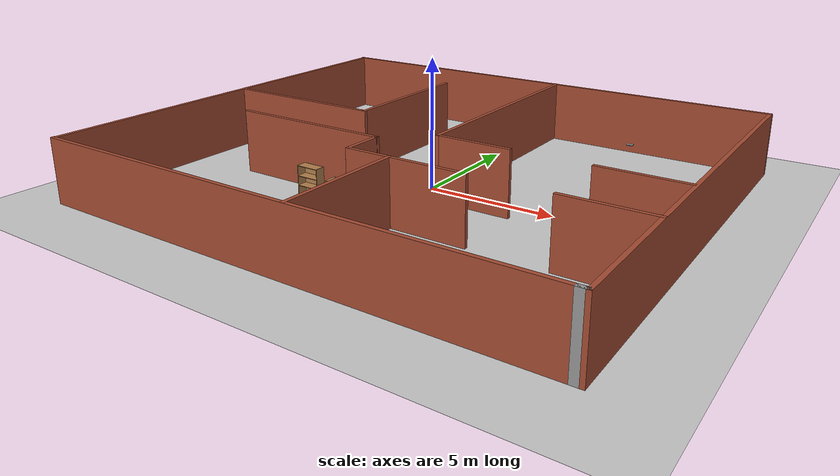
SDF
<sdf version="1.6">
 <world name="default">
  <light name="sun" type="directional">
   <pose>0 0 10 0 -0 0</pose>
   <diffuse>0.8 0.8 0.8 1</diffuse>
   <specular>0.1 0.1 0.1 1</specular>
   <attenuation>
    <range>1000</range>
    <constant>0.9</constant>
    <linear>0.01</linear>
    <quadratic>0.001</quadratic>
   </attenuation>
   <direction>-0.5 0.5 -1</direction>
  </light>
  <model name="ground_plane">
   <static>1</static>
   <link name="link">
    <collision name="collision">
     <geometry><plane><normal>0 0 1</normal><size>100 100</size></plane></geometry>
     <surface><friction><ode><mu>100</mu><mu2>50</mu2></ode></friction></surface>
    </collision>
    <visual name="visual">
     <cast_shadows>0</cast_shadows>
     <geometry><plane><normal>0 0 1</normal><size>100 100</size></plane></geometry>
     <material>
      <script><uri>file://media/materials/scripts/gazebo.material</uri><name>Gazebo/Grey</name></script>
     </material>
    </visual>
   </link>
  </model>
  <gravity>0 0 -9.8</gravity>
  <magnetic_field>6e-06 2.3e-05 -4.2e-05</magnetic_field>
  <atmosphere type="adiabatic"/>
  <physics name="default_physics" default="0" type="ode">
   <max_step_size>0.001</max_step_size>
   <real_time_factor>1</real_time_factor>
   <real_time_update_rate>1000</real_time_update_rate>
  </physics>
  <scene><ambient>0.4 0.4 0.4 1</ambient><background>0.7 0.7 0.7 1</background><shadows>1</shadows></scene>
  <spherical_coordinates>
   <surface_model>EARTH_WGS84</surface_model>
   <latitude_deg>0</latitude_deg>
   <longitude_deg>0</longitude_deg>
   <elevation>0</elevation>
   <heading_deg>0</heading_deg>
  </spherical_coordinates>
  <model name="textureWalls">
   <link name="Wall_10">
    <pose>9.91347 -8.68752 0 0 -0 3.14159</pose>
    <visual name="Wall_10_Visual">
     <pose>0 0 1.25 0 -0 0</pose>
     <geometry><box><size>0.423056 0.15 2.5</size></box></geometry>
     <material>
      <script><uri>file://media/materials/scripts/gazebo.material</uri><name>Gazebo/Grey</name></script>
      <ambient>1 1 1 1</ambient>
      <diffuse>0.7 0.7 0.7 1</diffuse>
      <specular>0.01 0.01 0.01 1</specular>
      <emissive>0 0 0 1</emissive>
     </material>
    </visual>
    <collision name="Wall_10_Collision">
     <pose>0 0 1.25 0 -0 0</pose>
     <geometry><box><size>0.423056 0.15 2.5</size></box></geometry>
     <surface>
      <friction>
       <ode><mu>1</mu><mu2>1</mu2><fdir1>0 0 0</fdir1><slip1>0</slip1><slip2>0</slip2></ode>
       <torsional>
        <coefficient>1</coefficient>
        <patch_radius>0</patch_radius>
        <surface_radius>0</surface_radius>
        <use_patch_radius>1</use_patch_radius>
        <ode><slip>0</slip></ode>
       </torsional>
      </friction>
      <bounce><restitution_coefficient>0</restitution_coefficient><threshold>1e+06</threshold></bounce>
      <contact>
       <collide_without_contact>0</collide_without_contact>
       <collide_without_contact_bitmask>1</collide_without_contact_bitmask>
       <collide_bitmask>1</collide_bitmask>
       <ode>
        <soft_cfm>0</soft_cfm>
        <soft_erp>0.2</soft_erp>
        <kp>1e+13</kp>
        <kd>1</kd>
        <max_vel>0.01</max_vel>
        <min_depth>0</min_depth>
       </ode>
       <bullet>
        <split_impulse>1</split_impulse>
        <split_impulse_penetration_threshold>-0.01</split_impulse_penetration_threshold>
        <soft_cfm>0</soft_cfm>
        <soft_erp>0.2</soft_erp>
        <kp>1e+13</kp>
        <kd>1</kd>
       </bullet>
      </contact>
     </surface>
    </collision>
   </link>
   <link name="Wall_12">
    <pose>10.05 -0.012524 0 0 -0 1.5708</pose>
    <visual name="Wall_12_Visual">
     <pose>0 0 1.25 0 -0 0</pose>
     <geometry><box><size>17.5 0.15 2.5</size></box></geometry>
     <material>
      <script><uri>file://media/materials/scripts/gazebo.material</uri><name>Gazebo/Bricks</name></script>
      <ambient>1 1 1 1</ambient>
      <diffuse>1 1 1 1</diffuse>
      <specular>0.2 0.2 0.2 1</specular>
      <emissive>0 0 0 1</emissive>
     </material>
    </visual>
    <collision name="Wall_12_Collision">
     <pose>0 0 1.25 0 -0 0</pose>
     <geometry><box><size>17.5 0.15 2.5</size></box></geometry>
     <surface>
      <friction>
       <ode><mu>1</mu><mu2>1</mu2><fdir1>0 0 0</fdir1><slip1>0</slip1><slip2>0</slip2></ode>
       <torsional>
        <coefficient>1</coefficient>
        <patch_radius>0</patch_radius>
        <surface_radius>0</surface_radius>
        <use_patch_radius>1</use_patch_radius>
        <ode><slip>0</slip></ode>
       </torsional>
      </friction>
      <bounce><restitution_coefficient>0</restitution_coefficient><threshold>1e+06</threshold></bounce>
      <contact>
       <collide_without_contact>0</collide_without_contact>
       <collide_without_contact_bitmask>1</collide_without_contact_bitmask>
       <collide_bitmask>1</collide_bitmask>
       <ode>
        <soft_cfm>0</soft_cfm>
        <soft_erp>0.2</soft_erp>
        <kp>1e+13</kp>
        <kd>1</kd>
        <max_vel>0.01</max_vel>
        <min_depth>0</min_depth>
       </ode>
       <bullet>
        <split_impulse>1</split_impulse>
        <split_impulse_penetration_threshold>-0.01</split_impulse_penetration_threshold>
        <soft_cfm>0</soft_cfm>
        <soft_erp>0.2</soft_erp>
        <kp>1e+13</kp>
        <kd>1</kd>
       </bullet>
      </contact>
     </surface>
    </collision>
   </link>
   <link name="Wall_14">
    <pose>-10.0148 -0.031987 0 0 0 -1.5708</pose>
    <visual name="Wall_14_Visual">
     <pose>0 0 1.25 0 -0 0</pose>
     <geometry><box><size>17.25 0.15 2.5</size></box></geometry>
     <material>
      <script><uri>file://media/materials/scripts/gazebo.material</uri><name>Gazebo/Bricks</name></script>
      <ambient>1 1 1 1</ambient>
      <diffuse>1 1 1 1</diffuse>
      <specular>0.2 0.2 0.2 1</specular>
      <emissive>0 0 0 1</emissive>
     </material>
    </visual>
    <collision name="Wall_14_Collision">
     <pose>0 0 1.25 0 -0 0</pose>
     <geometry><box><size>17.25 0.15 2.5</size></box></geometry>
     <surface>
      <friction>
       <ode><mu>1</mu><mu2>1</mu2><fdir1>0 0 0</fdir1><slip1>0</slip1><slip2>0</slip2></ode>
       <torsional>
        <coefficient>1</coefficient>
        <patch_radius>0</patch_radius>
        <surface_radius>0</surface_radius>
        <use_patch_radius>1</use_patch_radius>
        <ode><slip>0</slip></ode>
       </torsional>
      </friction>
      <bounce><restitution_coefficient>0</restitution_coefficient><threshold>1e+06</threshold></bounce>
      <contact>
       <collide_without_contact>0</collide_without_contact>
       <collide_without_contact_bitmask>1</collide_without_contact_bitmask>
       <collide_bitmask>1</collide_bitmask>
       <ode>
        <soft_cfm>0</soft_cfm>
        <soft_erp>0.2</soft_erp>
        <kp>1e+13</kp>
        <kd>1</kd>
        <max_vel>0.01</max_vel>
        <min_depth>0</min_depth>
       </ode>
       <bullet>
        <split_impulse>1</split_impulse>
        <split_impulse_penetration_threshold>-0.01</split_impulse_penetration_threshold>
        <soft_cfm>0</soft_cfm>
        <soft_erp>0.2</soft_erp>
        <kp>1e+13</kp>
        <kd>1</kd>
       </bullet>
      </contact>
     </surface>
    </collision>
   </link>
   <link name="Wall_17">
    <pose>0 8.66248 0 0 -0 3.14159</pose>
    <visual name="Wall_17_Visual">
     <pose>0 0 1.25 0 -0 0</pose>
     <geometry><box><size>20.25 0.15 2.5</size></box></geometry>
     <material>
      <script><uri>file://media/materials/scripts/gazebo.material</uri><name>Gazebo/Bricks</name></script>
      <ambient>1 1 1 1</ambient>
      <diffuse>1 1 1 1</diffuse>
      <specular>0.2 0.2 0.2 1</specular>
      <emissive>0 0 0 1</emissive>
     </material>
    </visual>
    <collision name="Wall_17_Collision">
     <pose>0 0 1.25 0 -0 0</pose>
     <geometry><box><size>20.25 0.15 2.5</size></box></geometry>
     <surface>
      <friction>
       <ode><mu>1</mu><mu2>1</mu2><fdir1>0 0 0</fdir1><slip1>0</slip1><slip2>0</slip2></ode>
       <torsional>
        <coefficient>1</coefficient>
        <patch_radius>0</patch_radius>
        <surface_radius>0</surface_radius>
        <use_patch_radius>1</use_patch_radius>
        <ode><slip>0</slip></ode>
       </torsional>
      </friction>
      <bounce><restitution_coefficient>0</restitution_coefficient><threshold>1e+06</threshold></bounce>
      <contact>
       <collide_without_contact>0</collide_without_contact>
       <collide_without_contact_bitmask>1</collide_without_contact_bitmask>
       <collide_bitmask>1</collide_bitmask>
       <ode>
        <soft_cfm>0</soft_cfm>
        <soft_erp>0.2</soft_erp>
        <kp>1e+13</kp>
        <kd>1</kd>
        <max_vel>0.01</max_vel>
        <min_depth>0</min_depth>
       </ode>
       <bullet>
        <split_impulse>1</split_impulse>
        <split_impulse_penetration_threshold>-0.01</split_impulse_penetration_threshold>
        <soft_cfm>0</soft_cfm>
        <soft_erp>0.2</soft_erp>
        <kp>1e+13</kp>
        <kd>1</kd>
       </bullet>
      </contact>
     </surface>
    </collision>
   </link>
   <link name="Wall_25">
    <pose>8.48297 -3.83231 0 0 -0 3.14159</pose>
    <visual name="Wall_25_Visual">
     <pose>0 0 1.25 0 -0 0</pose>
     <geometry><box><size>3.25 0.15 2.5</size></box></geometry>
     <material>
      <script><uri>file://media/materials/scripts/gazebo.material</uri><name>Gazebo/Bricks</name></script>
      <ambient>1 1 1 1</ambient>
      <diffuse>1 1 1 1</diffuse>
      <specular>0.2 0.2 0.2 1</specular>
      <emissive>0 0 0 1</emissive>
     </material>
    </visual>
    <collision name="Wall_25_Collision">
     <pose>0 0 1.25 0 -0 0</pose>
     <geometry><box><size>3.25 0.15 2.5</size></box></geometry>
     <surface>
      <friction>
       <ode><mu>1</mu><mu2>1</mu2><fdir1>0 0 0</fdir1><slip1>0</slip1><slip2>0</slip2></ode>
       <torsional>
        <coefficient>1</coefficient>
        <patch_radius>0</patch_radius>
        <surface_radius>0</surface_radius>
        <use_patch_radius>1</use_patch_radius>
        <ode><slip>0</slip></ode>
       </torsional>
      </friction>
      <bounce><restitution_coefficient>0</restitution_coefficient><threshold>1e+06</threshold></bounce>
      <contact>
       <collide_without_contact>0</collide_without_contact>
       <collide_without_contact_bitmask>1</collide_without_contact_bitmask>
       <collide_bitmask>1</collide_bitmask>
       <ode>
        <soft_cfm>0</soft_cfm>
        <soft_erp>0.2</soft_erp>
        <kp>1e+13</kp>
        <kd>1</kd>
        <max_vel>0.01</max_vel>
        <min_depth>0</min_depth>
       </ode>
       <bullet>
        <split_impulse>1</split_impulse>
        <split_impulse_penetration_threshold>-0.01</split_impulse_penetration_threshold>
        <soft_cfm>0</soft_cfm>
        <soft_erp>0.2</soft_erp>
        <kp>1e+13</kp>
        <kd>1</kd>
       </bullet>
      </contact>
     </surface>
    </collision>
   </link>
   <link name="Wall_27">
    <pose>8.41261 -0.912476 0 0 -0 3.14159</pose>
    <visual name="Wall_27_Visual">
     <pose>0 0 1.25 0 -0 0</pose>
     <geometry><box><size>3.25 0.15 2.5</size></box></geometry>
     <material>
      <script><uri>file://media/materials/scripts/gazebo.material</uri><name>Gazebo/Bricks</name></script>
      <ambient>1 1 1 1</ambient>
      <diffuse>1 1 1 1</diffuse>
      <specular>0.2 0.2 0.2 1</specular>
      <emissive>0 0 0 1</emissive>
     </material>
    </visual>
    <collision name="Wall_27_Collision">
     <pose>0 0 1.25 0 -0 0</pose>
     <geometry><box><size>3.25 0.15 2.5</size></box></geometry>
     <surface>
      <friction>
       <ode><mu>1</mu><mu2>1</mu2><fdir1>0 0 0</fdir1><slip1>0</slip1><slip2>0</slip2></ode>
       <torsional>
        <coefficient>1</coefficient>
        <patch_radius>0</patch_radius>
        <surface_radius>0</surface_radius>
        <use_patch_radius>1</use_patch_radius>
        <ode><slip>0</slip></ode>
       </torsional>
      </friction>
      <bounce><restitution_coefficient>0</restitution_coefficient><threshold>1e+06</threshold></bounce>
      <contact>
       <collide_without_contact>0</collide_without_contact>
       <collide_without_contact_bitmask>1</collide_without_contact_bitmask>
       <collide_bitmask>1</collide_bitmask>
       <ode>
        <soft_cfm>0</soft_cfm>
        <soft_erp>0.2</soft_erp>
        <kp>1e+13</kp>
        <kd>1</kd>
        <max_vel>0.01</max_vel>
        <min_depth>0</min_depth>
       </ode>
       <bullet>
        <split_impulse>1</split_impulse>
        <split_impulse_penetration_threshold>-0.01</split_impulse_penetration_threshold>
        <soft_cfm>0</soft_cfm>
        <soft_erp>0.2</soft_erp>
        <kp>1e+13</kp>
        <kd>1</kd>
       </bullet>
      </contact>
     </surface>
    </collision>
   </link>
   <link name="Wall_30">
    <pose>2.38133 -0.912476 0 0 -0 3.14159</pose>
    <visual name="Wall_30_Visual">
     <pose>0 0 1.25 0 -0 0</pose>
     <geometry><box><size>3 0.15 2.5</size></box></geometry>
     <material>
      <script><uri>file://media/materials/scripts/gazebo.material</uri><name>Gazebo/Bricks</name></script>
      <ambient>1 1 1 1</ambient>
      <diffuse>1 1 1 1</diffuse>
      <specular>0.2 0.2 0.2 1</specular>
      <emissive>0 0 0 1</emissive>
     </material>
    </visual>
    <collision name="Wall_30_Collision">
     <pose>0 0 1.25 0 -0 0</pose>
     <geometry><box><size>3 0.15 2.5</size></box></geometry>
     <surface>
      <friction>
       <ode><mu>1</mu><mu2>1</mu2><fdir1>0 0 0</fdir1><slip1>0</slip1><slip2>0</slip2></ode>
       <torsional>
        <coefficient>1</coefficient>
        <patch_radius>0</patch_radius>
        <surface_radius>0</surface_radius>
        <use_patch_radius>1</use_patch_radius>
        <ode><slip>0</slip></ode>
       </torsional>
      </friction>
      <bounce><restitution_coefficient>0</restitution_coefficient><threshold>1e+06</threshold></bounce>
      <contact>
       <collide_without_contact>0</collide_without_contact>
       <collide_without_contact_bitmask>1</collide_without_contact_bitmask>
       <collide_bitmask>1</collide_bitmask>
       <ode>
        <soft_cfm>0</soft_cfm>
        <soft_erp>0.2</soft_erp>
        <kp>1e+13</kp>
        <kd>1</kd>
        <max_vel>0.01</max_vel>
        <min_depth>0</min_depth>
       </ode>
       <bullet>
        <split_impulse>1</split_impulse>
        <split_impulse_penetration_threshold>-0.01</split_impulse_penetration_threshold>
        <soft_cfm>0</soft_cfm>
        <soft_erp>0.2</soft_erp>
        <kp>1e+13</kp>
        <kd>1</kd>
       </bullet>
      </contact>
     </surface>
    </collision>
   </link>
   <link name="Wall_32">
    <pose>0.956329 3.88752 0 0 -0 1.5708</pose>
    <visual name="Wall_32_Visual">
     <pose>0 0 1.25 0 -0 0</pose>
     <geometry><box><size>9.75 0.15 2.5</size></box></geometry>
     <material>
      <script><uri>file://media/materials/scripts/gazebo.material</uri><name>Gazebo/Bricks</name></script>
      <ambient>1 1 1 1</ambient>
      <diffuse>1 1 1 1</diffuse>
      <specular>0.2 0.2 0.2 1</specular>
      <emissive>0 0 0 1</emissive>
     </material>
    </visual>
    <collision name="Wall_32_Collision">
     <pose>0 0 1.25 0 -0 0</pose>
     <geometry><box><size>9.75 0.15 2.5</size></box></geometry>
     <surface>
      <friction>
       <ode><mu>1</mu><mu2>1</mu2><fdir1>0 0 0</fdir1><slip1>0</slip1><slip2>0</slip2></ode>
       <torsional>
        <coefficient>1</coefficient>
        <patch_radius>0</patch_radius>
        <surface_radius>0</surface_radius>
        <use_patch_radius>1</use_patch_radius>
        <ode><slip>0</slip></ode>
       </torsional>
      </friction>
      <bounce><restitution_coefficient>0</restitution_coefficient><threshold>1e+06</threshold></bounce>
      <contact>
       <collide_without_contact>0</collide_without_contact>
       <collide_without_contact_bitmask>1</collide_without_contact_bitmask>
       <collide_bitmask>1</collide_bitmask>
       <ode>
        <soft_cfm>0</soft_cfm>
        <soft_erp>0.2</soft_erp>
        <kp>1e+13</kp>
        <kd>1</kd>
        <max_vel>0.01</max_vel>
        <min_depth>0</min_depth>
       </ode>
       <bullet>
        <split_impulse>1</split_impulse>
        <split_impulse_penetration_threshold>-0.01</split_impulse_penetration_threshold>
        <soft_cfm>0</soft_cfm>
        <soft_erp>0.2</soft_erp>
        <kp>1e+13</kp>
        <kd>1</kd>
       </bullet>
      </contact>
     </surface>
    </collision>
   </link>
   <link name="Wall_38">
    <pose>-3.28652 3.17156 0 0 0 -1.5708</pose>
    <visual name="Wall_38_Visual">
     <pose>0 0 1.25 0 -0 0</pose>
     <geometry><box><size>6 0.15 2.5</size></box></geometry>
     <material>
      <script><uri>file://media/materials/scripts/gazebo.material</uri><name>Gazebo/Bricks</name></script>
      <ambient>1 1 1 1</ambient>
      <diffuse>1 1 1 1</diffuse>
      <specular>0.2 0.2 0.2 1</specular>
      <emissive>0 0 0 1</emissive>
     </material>
    </visual>
    <collision name="Wall_38_Collision">
     <pose>0 0 1.25 0 -0 0</pose>
     <geometry><box><size>6 0.15 2.5</size></box></geometry>
     <surface>
      <friction>
       <ode><mu>1</mu><mu2>1</mu2><fdir1>0 0 0</fdir1><slip1>0</slip1><slip2>0</slip2></ode>
       <torsional>
        <coefficient>1</coefficient>
        <patch_radius>0</patch_radius>
        <surface_radius>0</surface_radius>
        <use_patch_radius>1</use_patch_radius>
        <ode><slip>0</slip></ode>
       </torsional>
      </friction>
      <bounce><restitution_coefficient>0</restitution_coefficient><threshold>1e+06</threshold></bounce>
      <contact>
       <collide_without_contact>0</collide_without_contact>
       <collide_without_contact_bitmask>1</collide_without_contact_bitmask>
       <collide_bitmask>1</collide_bitmask>
       <ode>
        <soft_cfm>0</soft_cfm>
        <soft_erp>0.2</soft_erp>
        <kp>1e+13</kp>
        <kd>1</kd>
        <max_vel>0.01</max_vel>
        <min_depth>0</min_depth>
       </ode>
       <bullet>
        <split_impulse>1</split_impulse>
        <split_impulse_penetration_threshold>-0.01</split_impulse_penetration_threshold>
        <soft_cfm>0</soft_cfm>
        <soft_erp>0.2</soft_erp>
        <kp>1e+13</kp>
        <kd>1</kd>
       </bullet>
      </contact>
     </surface>
    </collision>
   </link>
   <link name="Wall_39">
    <pose>-6.58652 0.246559 0 0 -0 3.14159</pose>
    <visual name="Wall_39_Visual">
     <pose>0 0 1.25 0 -0 0</pose>
     <geometry><box><size>6.75 0.15 2.5</size></box></geometry>
     <material>
      <script><uri>file://media/materials/scripts/gazebo.material</uri><name>Gazebo/Bricks</name></script>
      <ambient>1 1 1 1</ambient>
      <diffuse>1 1 1 1</diffuse>
      <specular>0.2 0.2 0.2 1</specular>
      <emissive>0 0 0 1</emissive>
     </material>
    </visual>
    <collision name="Wall_39_Collision">
     <pose>0 0 1.25 0 -0 0</pose>
     <geometry><box><size>6.75 0.15 2.5</size></box></geometry>
     <surface>
      <friction>
       <ode><mu>1</mu><mu2>1</mu2><fdir1>0 0 0</fdir1><slip1>0</slip1><slip2>0</slip2></ode>
       <torsional>
        <coefficient>1</coefficient>
        <patch_radius>0</patch_radius>
        <surface_radius>0</surface_radius>
        <use_patch_radius>1</use_patch_radius>
        <ode><slip>0</slip></ode>
       </torsional>
      </friction>
      <bounce><restitution_coefficient>0</restitution_coefficient><threshold>1e+06</threshold></bounce>
      <contact>
       <collide_without_contact>0</collide_without_contact>
       <collide_without_contact_bitmask>1</collide_without_contact_bitmask>
       <collide_bitmask>1</collide_bitmask>
       <ode>
        <soft_cfm>0</soft_cfm>
        <soft_erp>0.2</soft_erp>
        <kp>1e+13</kp>
        <kd>1</kd>
        <max_vel>0.01</max_vel>
        <min_depth>0</min_depth>
       </ode>
       <bullet>
        <split_impulse>1</split_impulse>
        <split_impulse_penetration_threshold>-0.01</split_impulse_penetration_threshold>
        <soft_cfm>0</soft_cfm>
        <soft_erp>0.2</soft_erp>
        <kp>1e+13</kp>
        <kd>1</kd>
       </bullet>
      </contact>
     </surface>
    </collision>
   </link>
   <link name="Wall_41">
    <pose>-3.90479 -2.29687 0 0 -0 0</pose>
    <visual name="Wall_41_Visual">
     <pose>0 0 1.25 0 -0 0</pose>
     <geometry><box><size>6.5 0.15 2.5</size></box></geometry>
     <material>
      <script><uri>file://media/materials/scripts/gazebo.material</uri><name>Gazebo/Bricks</name></script>
      <ambient>1 1 1 1</ambient>
      <diffuse>1 1 1 1</diffuse>
      <specular>0.2 0.2 0.2 1</specular>
      <emissive>0 0 0 1</emissive>
     </material>
    </visual>
    <collision name="Wall_41_Collision">
     <pose>0 0 1.25 0 -0 0</pose>
     <geometry><box><size>6.5 0.15 2.5</size></box></geometry>
     <surface>
      <friction>
       <ode><mu>1</mu><mu2>1</mu2><fdir1>0 0 0</fdir1><slip1>0</slip1><slip2>0</slip2></ode>
       <torsional>
        <coefficient>1</coefficient>
        <patch_radius>0</patch_radius>
        <surface_radius>0</surface_radius>
        <use_patch_radius>1</use_patch_radius>
        <ode><slip>0</slip></ode>
       </torsional>
      </friction>
      <bounce><restitution_coefficient>0</restitution_coefficient><threshold>1e+06</threshold></bounce>
      <contact>
       <collide_without_contact>0</collide_without_contact>
       <collide_without_contact_bitmask>1</collide_without_contact_bitmask>
       <collide_bitmask>1</collide_bitmask>
       <ode>
        <soft_cfm>0</soft_cfm>
        <soft_erp>0.2</soft_erp>
        <kp>1e+13</kp>
        <kd>1</kd>
        <max_vel>0.01</max_vel>
        <min_depth>0</min_depth>
       </ode>
       <bullet>
        <split_impulse>1</split_impulse>
        <split_impulse_penetration_threshold>-0.01</split_impulse_penetration_threshold>
        <soft_cfm>0</soft_cfm>
        <soft_erp>0.2</soft_erp>
        <kp>1e+13</kp>
        <kd>1</kd>
       </bullet>
      </contact>
     </surface>
    </collision>
   </link>
   <link name="Wall_46">
    <pose>0.970868 -6.25918 0 0 0 -1.5708</pose>
    <visual name="Wall_46_Visual">
     <pose>0 0 1.25 0 -0 0</pose>
     <geometry><box><size>5 0.15 2.5</size></box></geometry>
     <material>
      <script><uri>file://media/materials/scripts/gazebo.material</uri><name>Gazebo/Bricks</name></script>
      <ambient>1 1 1 1</ambient>
      <diffuse>1 1 1 1</diffuse>
      <specular>0.2 0.2 0.2 1</specular>
      <emissive>0 0 0 1</emissive>
     </material>
    </visual>
    <collision name="Wall_46_Collision">
     <pose>0 0 1.25 0 -0 0</pose>
     <geometry><box><size>5 0.15 2.5</size></box></geometry>
     <surface>
      <friction>
       <ode><mu>1</mu><mu2>1</mu2><fdir1>0 0 0</fdir1><slip1>0</slip1><slip2>0</slip2></ode>
       <torsional>
        <coefficient>1</coefficient>
        <patch_radius>0</patch_radius>
        <surface_radius>0</surface_radius>
        <use_patch_radius>1</use_patch_radius>
        <ode><slip>0</slip></ode>
       </torsional>
      </friction>
      <bounce><restitution_coefficient>0</restitution_coefficient><threshold>1e+06</threshold></bounce>
      <contact>
       <collide_without_contact>0</collide_without_contact>
       <collide_without_contact_bitmask>1</collide_without_contact_bitmask>
       <collide_bitmask>1</collide_bitmask>
       <ode>
        <soft_cfm>0</soft_cfm>
        <soft_erp>0.2</soft_erp>
        <kp>1e+13</kp>
        <kd>1</kd>
        <max_vel>0.01</max_vel>
        <min_depth>0</min_depth>
       </ode>
       <bullet>
        <split_impulse>1</split_impulse>
        <split_impulse_penetration_threshold>-0.01</split_impulse_penetration_threshold>
        <soft_cfm>0</soft_cfm>
        <soft_erp>0.2</soft_erp>
        <kp>1e+13</kp>
        <kd>1</kd>
       </bullet>
      </contact>
     </surface>
    </collision>
   </link>
   <link name="Wall_48">
    <pose>-0.729792 -3.05763 0 0 0 -1.5708</pose>
    <visual name="Wall_48_Visual">
     <pose>0 0 1.25 0 -0 0</pose>
     <geometry><box><size>1.67153 0.15 2.5</size></box></geometry>
     <material>
      <script><uri>file://media/materials/scripts/gazebo.material</uri><name>Gazebo/Bricks</name></script>
      <ambient>1 1 1 1</ambient>
      <diffuse>1 1 1 1</diffuse>
      <specular>0.2 0.2 0.2 1</specular>
      <emissive>0 0 0 1</emissive>
     </material>
    </visual>
    <collision name="Wall_48_Collision">
     <pose>0 0 1.25 0 -0 0</pose>
     <geometry><box><size>1.67153 0.15 2.5</size></box></geometry>
     <surface>
      <friction>
       <ode><mu>1</mu><mu2>1</mu2><fdir1>0 0 0</fdir1><slip1>0</slip1><slip2>0</slip2></ode>
       <torsional>
        <coefficient>1</coefficient>
        <patch_radius>0</patch_radius>
        <surface_radius>0</surface_radius>
        <use_patch_radius>1</use_patch_radius>
        <ode><slip>0</slip></ode>
       </torsional>
      </friction>
      <bounce><restitution_coefficient>0</restitution_coefficient><threshold>1e+06</threshold></bounce>
      <contact>
       <collide_without_contact>0</collide_without_contact>
       <collide_without_contact_bitmask>1</collide_without_contact_bitmask>
       <collide_bitmask>1</collide_bitmask>
       <ode>
        <soft_cfm>0</soft_cfm>
        <soft_erp>0.2</soft_erp>
        <kp>1e+13</kp>
        <kd>1</kd>
        <max_vel>0.01</max_vel>
        <min_depth>0</min_depth>
       </ode>
       <bullet>
        <split_impulse>1</split_impulse>
        <split_impulse_penetration_threshold>-0.01</split_impulse_penetration_threshold>
        <soft_cfm>0</soft_cfm>
        <soft_erp>0.2</soft_erp>
        <kp>1e+13</kp>
        <kd>1</kd>
       </bullet>
      </contact>
     </surface>
    </collision>
   </link>
   <link name="Wall_49">
    <pose>1.57593 -3.82411 0 0 -0 0</pose>
    <visual name="Wall_49_Visual">
     <pose>0 0 1.25 0 -0 0</pose>
     <geometry><box><size>4.75 0.15 2.5</size></box></geometry>
     <material>
      <script><uri>file://media/materials/scripts/gazebo.material</uri><name>Gazebo/Bricks</name></script>
      <ambient>1 1 1 1</ambient>
      <diffuse>1 1 1 1</diffuse>
      <specular>0.2 0.2 0.2 1</specular>
      <emissive>0 0 0 1</emissive>
     </material>
    </visual>
    <collision name="Wall_49_Collision">
     <pose>0 0 1.25 0 -0 0</pose>
     <geometry><box><size>4.75 0.15 2.5</size></box></geometry>
     <surface>
      <friction>
       <ode><mu>1</mu><mu2>1</mu2><fdir1>0 0 0</fdir1><slip1>0</slip1><slip2>0</slip2></ode>
       <torsional>
        <coefficient>1</coefficient>
        <patch_radius>0</patch_radius>
        <surface_radius>0</surface_radius>
        <use_patch_radius>1</use_patch_radius>
        <ode><slip>0</slip></ode>
       </torsional>
      </friction>
      <bounce><restitution_coefficient>0</restitution_coefficient><threshold>1e+06</threshold></bounce>
      <contact>
       <collide_without_contact>0</collide_without_contact>
       <collide_without_contact_bitmask>1</collide_without_contact_bitmask>
       <collide_bitmask>1</collide_bitmask>
       <ode>
        <soft_cfm>0</soft_cfm>
        <soft_erp>0.2</soft_erp>
        <kp>1e+13</kp>
        <kd>1</kd>
        <max_vel>0.01</max_vel>
        <min_depth>0</min_depth>
       </ode>
       <bullet>
        <split_impulse>1</split_impulse>
        <split_impulse_penetration_threshold>-0.01</split_impulse_penetration_threshold>
        <soft_cfm>0</soft_cfm>
        <soft_erp>0.2</soft_erp>
        <kp>1e+13</kp>
        <kd>1</kd>
       </bullet>
      </contact>
     </surface>
    </collision>
   </link>
   <link name="Wall_9">
    <pose>0 -8.68752 0 0 -0 0</pose>
    <visual name="Wall_9_Visual">
     <pose>0 0 1.25 0 -0 0</pose>
     <geometry><box><size>20.25 0.15 2.5</size></box></geometry>
     <material>
      <script><uri>file://media/materials/scripts/gazebo.material</uri><name>Gazebo/Bricks</name></script>
      <ambient>1 1 1 1</ambient>
      <diffuse>1 1 1 1</diffuse>
      <specular>0.2 0.2 0.2 1</specular>
      <emissive>0 0 0 1</emissive>
     </material>
    </visual>
    <collision name="Wall_9_Collision">
     <pose>0 0 1.25 0 -0 0</pose>
     <geometry><box><size>20.25 0.15 2.5</size></box></geometry>
     <surface>
      <friction>
       <ode><mu>1</mu><mu2>1</mu2><fdir1>0 0 0</fdir1><slip1>0</slip1><slip2>0</slip2></ode>
       <torsional>
        <coefficient>1</coefficient>
        <patch_radius>0</patch_radius>
        <surface_radius>0</surface_radius>
        <use_patch_radius>1</use_patch_radius>
        <ode><slip>0</slip></ode>
       </torsional>
      </friction>
      <bounce><restitution_coefficient>0</restitution_coefficient><threshold>1e+06</threshold></bounce>
      <contact>
       <collide_without_contact>0</collide_without_contact>
       <collide_without_contact_bitmask>1</collide_without_contact_bitmask>
       <collide_bitmask>1</collide_bitmask>
       <ode>
        <soft_cfm>0</soft_cfm>
        <soft_erp>0.2</soft_erp>
        <kp>1e+13</kp>
        <kd>1</kd>
        <max_vel>0.01</max_vel>
        <min_depth>0</min_depth>
       </ode>
       <bullet>
        <split_impulse>1</split_impulse>
        <split_impulse_penetration_threshold>-0.01</split_impulse_penetration_threshold>
        <soft_cfm>0</soft_cfm>
        <soft_erp>0.2</soft_erp>
        <kp>1e+13</kp>
        <kd>1</kd>
       </bullet>
      </contact>
     </surface>
    </collision>
   </link>
   <static>1</static>
   <pose>-0.06675 -0.05128 0 0 -0 0</pose>
  </model>
  <model name="book_10">
   <link name="cover">
    <pose>0 -0.000108 0.015405 0 -0 0</pose>
    <visual name="visual">
     <geometry><box><size>0.245 0.16 0.03</size></box></geometry>
     <material>
      <script>
       <uri>model://book_10/materials/scripts</uri>
       <uri>model://book_10/materials/textures</uri>
       <name>book_10</name>
      </script>
     </material>
    </visual>
    <collision name="collision"><geometry><box><size>0.245 0.16 0.03</size></box></geometry></collision>
   </link>
   <link name="page">
    <pose>0 0.000608 0.015405 0 -0 0</pose>
    <visual name="visual">
     <geometry><box><size>0.24502 0.15862 0.028</size></box></geometry>
     <material>
      <lighting>1</lighting>
      <ambient>1 1 1 1</ambient>
      <diffuse>1 1 1 1</diffuse>
      <specular>0.01 0.01 0.01 1</specular>
      <emissive>0 0 0 1</emissive>
      <shader type="vertex"><normal_map>__default__</normal_map></shader>
     </material>
    </visual>
    <collision name="collision"><geometry><box><size>0.245 0.16 0.03</size></box></geometry></collision>
   </link>
   <static>1</static>
   <pose>5.00216 7.21347 0.720943 0 -0 0</pose>
  </model>
  <model name="book_21">
   <link name="cover">
    <pose>0 -0.000108 0.005 0 -0 0</pose>
    <visual name="visual">
     <geometry><box><size>0.245 0.16 0.01</size></box></geometry>
     <material>
      <script>
       <uri>model://book_21/materials/scripts</uri>
       <uri>model://book_21/materials/textures</uri>
       <name>book_21</name>
      </script>
     </material>
    </visual>
    <collision name="collision"><geometry><box><size>0.245 0.16 0.01</size></box></geometry></collision>
   </link>
   <link name="page">
    <pose>0 0.000608 0.005 0 -0 0</pose>
    <visual name="visual">
     <geometry><box><size>0.24502 0.15862 0.008</size></box></geometry>
     <material>
      <lighting>1</lighting>
      <ambient>1 1 1 1</ambient>
      <diffuse>1 1 1 1</diffuse>
      <specular>0.01 0.01 0.01 1</specular>
      <emissive>0 0 0 1</emissive>
      <shader type="vertex"><normal_map>__default__</normal_map></shader>
     </material>
    </visual>
    <collision name="collision"><geometry><box><size>0.245 0.16 0.008</size></box></geometry></collision>
   </link>
   <static>1</static>
   <pose>5.00455 7.21263 0.750607 0 -0 0</pose>
  </model>
  <model name="cabinet">
   <static>1</static>
   <link name="cabinet_bottom_plate">
    <inertial>
     <pose>0 0 -1 0 -0 0</pose>
     <inertia><ixx>2.05</ixx><ixy>0</ixy><ixz>0</ixz><iyy>2.05</iyy><iyz>0</iyz><izz>2.05</izz></inertia>
     <mass>25</mass>
    </inertial>
    <collision name="cabinet_bottom_plate_geom">
     <pose>0 0 0.01 0 -0 0</pose>
     <geometry><box><size>0.45 0.45 0.02</size></box></geometry>
    </collision>
    <visual name="cabinet_bottom_plate_geom_visual">
     <pose>0 0 0.01 0 -0 0</pose>
     <geometry><box><size>0.45 0.45 0.02</size></box></geometry>
     <material>
      <script><uri>file://media/materials/scripts/gazebo.material</uri><name>Gazebo/Wood</name></script>
     </material>
    </visual>
    <collision name="cabinet_bottom_plate_geom_cabinet_back_plate">
     <pose>0.235 0 0.51 0 -0 0</pose>
     <geometry><box><size>0.02 0.45 1.02</size></box></geometry>
    </collision>
    <visual name="cabinet_bottom_plate_geom_cabinet_back_plate_visual">
     <pose>0.235 0 0.51 0 -0 0</pose>
     <geometry><box><size>0.02 0.45 1.02</size></box></geometry>
     <material>
      <script><uri>file://media/materials/scripts/gazebo.material</uri><name>Gazebo/Wood</name></script>
     </material>
    </visual>
    <collision name="cabinet_bottom_plate_geom_cabinet_left_plate">
     <pose>0 0.235 0.51 0 -0 0</pose>
     <geometry><box><size>0.45 0.02 1.02</size></box></geometry>
    </collision>
    <visual name="cabinet_bottom_plate_geom_cabinet_left_plate_visual">
     <pose>0 0.235 0.51 0 -0 0</pose>
     <geometry><box><size>0.45 0.02 1.02</size></box></geometry>
     <material>
      <script><uri>file://media/materials/scripts/gazebo.material</uri><name>Gazebo/Wood</name></script>
     </material>
    </visual>
    <collision name="cabinet_bottom_plate_geom_cabinet_middle_plate">
     <pose>0 0 0.51 0 -0 0</pose>
     <geometry><box><size>0.45 0.45 0.02</size></box></geometry>
    </collision>
    <visual name="cabinet_bottom_plate_geom_cabinet_middle_plate_visual">
     <pose>0 0 0.51 0 -0 0</pose>
     <geometry><box><size>0.45 0.45 0.02</size></box></geometry>
     <material>
      <script><uri>file://media/materials/scripts/gazebo.material</uri><name>Gazebo/Wood</name></script>
     </material>
    </visual>
    <collision name="cabinet_bottom_plate_geom_cabinet_right_plate">
     <pose>0 -0.235 0.51 0 -0 0</pose>
     <geometry><box><size>0.45 0.02 1.02</size></box></geometry>
    </collision>
    <visual name="cabinet_bottom_plate_geom_cabinet_right_plate_visual">
     <pose>0 -0.235 0.51 0 -0 0</pose>
     <geometry><box><size>0.45 0.02 1.02</size></box></geometry>
     <material>
      <script><uri>file://media/materials/scripts/gazebo.material</uri><name>Gazebo/Wood</name></script>
     </material>
    </visual>
    <collision name="cabinet_bottom_plate_geom_cabinet_top_plate">
     <pose>0 0 1.01 0 -0 0</pose>
     <geometry><box><size>0.45 0.45 0.02</size></box></geometry>
    </collision>
    <visual name="cabinet_bottom_plate_geom_cabinet_top_plate_visual">
     <pose>0 0 1.01 0 -0 0</pose>
     <geometry><box><size>0.45 0.45 0.02</size></box></geometry>
     <material>
      <script><uri>file://media/materials/scripts/gazebo.material</uri><name>Gazebo/Wood</name></script>
     </material>
    </visual>
   </link>
   <pose>-1.80408 -3.48323 0 0 -0 0</pose>
  </model>
  <model name="cabinet_0">
   <static>1</static>
   <link name="cabinet_bottom_plate">
    <inertial>
     <pose>0 0 -1 0 -0 0</pose>
     <inertia><ixx>2.05</ixx><ixy>0</ixy><ixz>0</ixz><iyy>2.05</iyy><iyz>0</iyz><izz>2.05</izz></inertia>
     <mass>25</mass>
    </inertial>
    <collision name="cabinet_bottom_plate_geom">
     <pose>0 0 0.01 0 -0 0</pose>
     <geometry><box><size>0.45 0.45 0.02</size></box></geometry>
    </collision>
    <visual name="cabinet_bottom_plate_geom_visual">
     <pose>0 0 0.01 0 -0 0</pose>
     <geometry><box><size>0.45 0.45 0.02</size></box></geometry>
     <material>
      <script><uri>file://media/materials/scripts/gazebo.material</uri><name>Gazebo/Wood</name></script>
     </material>
    </visual>
    <collision name="cabinet_bottom_plate_geom_cabinet_back_plate">
     <pose>0.235 0 0.51 0 -0 0</pose>
     <geometry><box><size>0.02 0.45 1.02</size></box></geometry>
    </collision>
    <visual name="cabinet_bottom_plate_geom_cabinet_back_plate_visual">
     <pose>0.235 0 0.51 0 -0 0</pose>
     <geometry><box><size>0.02 0.45 1.02</size></box></geometry>
     <material>
      <script><uri>file://media/materials/scripts/gazebo.material</uri><name>Gazebo/Wood</name></script>
     </material>
    </visual>
    <collision name="cabinet_bottom_plate_geom_cabinet_left_plate">
     <pose>0 0.235 0.51 0 -0 0</pose>
     <geometry><box><size>0.45 0.02 1.02</size></box></geometry>
    </collision>
    <visual name="cabinet_bottom_plate_geom_cabinet_left_plate_visual">
     <pose>0 0.235 0.51 0 -0 0</pose>
     <geometry><box><size>0.45 0.02 1.02</size></box></geometry>
     <material>
      <script><uri>file://media/materials/scripts/gazebo.material</uri><name>Gazebo/Wood</name></script>
     </material>
    </visual>
    <collision name="cabinet_bottom_plate_geom_cabinet_middle_plate">
     <pose>0 0 0.51 0 -0 0</pose>
     <geometry><box><size>0.45 0.45 0.02</size></box></geometry>
    </collision>
    <visual name="cabinet_bottom_plate_geom_cabinet_middle_plate_visual">
     <pose>0 0 0.51 0 -0 0</pose>
     <geometry><box><size>0.45 0.45 0.02</size></box></geometry>
     <material>
      <script><uri>file://media/materials/scripts/gazebo.material</uri><name>Gazebo/Wood</name></script>
     </material>
    </visual>
    <collision name="cabinet_bottom_plate_geom_cabinet_right_plate">
     <pose>0 -0.235 0.51 0 -0 0</pose>
     <geometry><box><size>0.45 0.02 1.02</size></box></geometry>
    </collision>
    <visual name="cabinet_bottom_plate_geom_cabinet_right_plate_visual">
     <pose>0 -0.235 0.51 0 -0 0</pose>
     <geometry><box><size>0.45 0.02 1.02</size></box></geometry>
     <material>
      <script><uri>file://media/materials/scripts/gazebo.material</uri><name>Gazebo/Wood</name></script>
     </material>
    </visual>
    <collision name="cabinet_bottom_plate_geom_cabinet_top_plate">
     <pose>0 0 1.01 0 -0 0</pose>
     <geometry><box><size>0.45 0.45 0.02</size></box></geometry>
    </collision>
    <visual name="cabinet_bottom_plate_geom_cabinet_top_plate_visual">
     <pose>0 0 1.01 0 -0 0</pose>
     <geometry><box><size>0.45 0.45 0.02</size></box></geometry>
     <material>
      <script><uri>file://media/materials/scripts/gazebo.material</uri><name>Gazebo/Wood</name></script>
     </material>
    </visual>
   </link>
   <pose>-0.82279 6.99639 0 0 -0 1.41611</pose>
  </model>
  <model name="bookshelf">
   <static>1</static>
   <link name="link">
    <inertial><mass>1</mass></inertial>
    <collision name="back">
     <pose>0 0.005 0.6 0 -0 0</pose>
     <geometry><box><size>0.9 0.01 1.2</size></box></geometry>
    </collision>
    <visual name="visual1">
     <pose>0 0.005 0.6 0 -0 0</pose>
     <geometry><box><size>0.9 0.01 1.2</size></box></geometry>
     <material>
      <script><uri>file://media/materials/scripts/gazebo.material</uri><name>Gazebo/Wood</name></script>
     </material>
    </visual>
    <collision name="left_side">
     <pose>0.45 -0.195 0.6 0 -0 0</pose>
     <geometry><box><size>0.02 0.4 1.2</size></box></geometry>
    </collision>
    <visual name="visual2">
     <pose>0.45 -0.195 0.6 0 -0 0</pose>
     <geometry><box><size>0.02 0.4 1.2</size></box></geometry>
     <material>
      <script><uri>file://media/materials/scripts/gazebo.material</uri><name>Gazebo/Wood</name></script>
     </material>
    </visual>
    <collision name="right_side">
     <pose>-0.45 -0.195 0.6 0 -0 0</pose>
     <geometry><box><size>0.02 0.4 1.2</size></box></geometry>
    </collision>
    <visual name="visual3">
     <pose>-0.45 -0.195 0.6 0 -0 0</pose>
     <geometry><box><size>0.02 0.4 1.2</size></box></geometry>
     <material>
      <script><uri>file://media/materials/scripts/gazebo.material</uri><name>Gazebo/Wood</name></script>
     </material>
    </visual>
    <collision name="bottom">
     <pose>0 -0.195 0.03 0 -0 0</pose>
     <geometry><box><size>0.88 0.4 0.06</size></box></geometry>
    </collision>
    <visual name="visual4">
     <pose>0 -0.195 0.03 0 -0 0</pose>
     <geometry><box><size>0.88 0.4 0.06</size></box></geometry>
     <material>
      <script><uri>file://media/materials/scripts/gazebo.material</uri><name>Gazebo/Wood</name></script>
     </material>
    </visual>
    <collision name="top">
     <pose>0 -0.195 1.19 0 -0 0</pose>
     <geometry><box><size>0.88 0.4 0.02</size></box></geometry>
    </collision>
    <visual name="visual5">
     <pose>0 -0.195 1.19 0 -0 0</pose>
     <geometry><box><size>0.88 0.4 0.02</size></box></geometry>
     <material>
      <script><uri>file://media/materials/scripts/gazebo.material</uri><name>Gazebo/Wood</name></script>
     </material>
    </visual>
    <collision name="low_shelf">
     <pose>0 -0.195 0.43 0 -0 0</pose>
     <geometry><box><size>0.88 0.4 0.02</size></box></geometry>
    </collision>
    <visual name="visual6">
     <pose>0 -0.195 0.43 0 -0 0</pose>
     <geometry><box><size>0.88 0.4 0.02</size></box></geometry>
     <material>
      <script><uri>file://media/materials/scripts/gazebo.material</uri><name>Gazebo/Wood</name></script>
     </material>
    </visual>
    <collision name="high_shelf">
     <pose>0 -0.195 0.8 0 -0 0</pose>
     <geometry><box><size>0.88 0.4 0.02</size></box></geometry>
    </collision>
    <visual name="visual7">
     <pose>0 -0.195 0.8 0 -0 0</pose>
     <geometry><box><size>0.88 0.4 0.02</size></box></geometry>
     <material>
      <script><uri>file://media/materials/scripts/gazebo.material</uri><name>Gazebo/Wood</name></script>
     </material>
    </visual>
   </link>
   <pose>-3.16777 -3.03265 0 0 -0 0</pose>
  </model>
  <audio><device>default</device></audio>
 </world>
</sdf>
